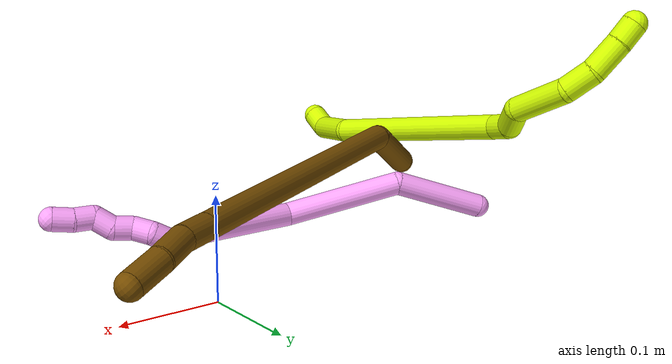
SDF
<sdf version="1.7">
 <world name="default">
  <model name="4">
   <static>0</static>
   <link name="4">
    <collision name="collision-cylinder-e_1_1_4">
     <pose>0.034634 -0.025984 -0.023651 2.30922 0.77819 1.4957</pose>
     <geometry><cylinder><radius>0.0125</radius><length>0.098672</length></cylinder></geometry>
     <surface>
      <friction><ode><mu>1.16</mu><mu2>1.16</mu2><slip1>0</slip1><slip2>0</slip2></ode></friction>
      <contact><ode><kp>1e+06</kp><kd>1</kd><max_vel>0</max_vel><min_depth>0.001</min_depth></ode></contact>
     </surface>
    </collision>
    <visual name="visual-cylinder-e_1_1_4">
     <pose>0.034634 -0.025984 -0.023651 2.30922 0.77819 1.4957</pose>
     <geometry><cylinder><radius>0.0125</radius><length>0.098672</length></cylinder></geometry>
     <material><ambient>1 0.65098 0.996078 1</ambient></material>
    </visual>
    <collision name="collision-cylinder-e_2_4_5">
     <pose>0.088183 -0.075472 -0.102307 2.73778 0.306288 1.29219</pose>
     <geometry><cylinder><radius>0.0125</radius><length>0.125471</length></cylinder></geometry>
     <surface>
      <friction><ode><mu>1.16</mu><mu2>1.16</mu2><slip1>0</slip1><slip2>0</slip2></ode></friction>
      <contact><ode><kp>1e+06</kp><kd>1</kd><max_vel>0</max_vel><min_depth>0.001</min_depth></ode></contact>
     </surface>
    </collision>
    <visual name="visual-cylinder-e_2_4_5">
     <pose>0.088183 -0.075472 -0.102307 2.73778 0.306288 1.29219</pose>
     <geometry><cylinder><radius>0.0125</radius><length>0.125471</length></cylinder></geometry>
     <material><ambient>1 0.65098 0.996078 1</ambient></material>
    </visual>
    <collision name="collision-cylinder-e_3_5_6">
     <pose>0.153693 -0.099904 -0.197454 3.11846 0.859507 3.09113</pose>
     <geometry><cylinder><radius>0.0125</radius><length>0.123017</length></cylinder></geometry>
     <surface>
      <friction><ode><mu>1.16</mu><mu2>1.16</mu2><slip1>0</slip1><slip2>0</slip2></ode></friction>
      <contact><ode><kp>1e+06</kp><kd>1</kd><max_vel>0</max_vel><min_depth>0.001</min_depth></ode></contact>
     </surface>
    </collision>
    <visual name="visual-cylinder-e_3_5_6">
     <pose>0.153693 -0.099904 -0.197454 3.11846 0.859507 3.09113</pose>
     <geometry><cylinder><radius>0.0125</radius><length>0.123017</length></cylinder></geometry>
     <material><ambient>1 0.65098 0.996078 1</ambient></material>
    </visual>
    <collision name="collision-cylinder-e_4_6_7">
     <pose>0.208165 -0.100629 -0.24714 -3.12022 0.68997 -3.08214</pose>
     <geometry><cylinder><radius>0.0125</radius><length>0.024753</length></cylinder></geometry>
     <surface>
      <friction><ode><mu>1.16</mu><mu2>1.16</mu2><slip1>0</slip1><slip2>0</slip2></ode></friction>
      <contact><ode><kp>1e+06</kp><kd>1</kd><max_vel>0</max_vel><min_depth>0.001</min_depth></ode></contact>
     </surface>
    </collision>
    <visual name="visual-cylinder-e_4_6_7">
     <pose>0.208165 -0.100629 -0.24714 -3.12022 0.68997 -3.08214</pose>
     <geometry><cylinder><radius>0.0125</radius><length>0.024753</length></cylinder></geometry>
     <material><ambient>1 0.65098 0.996078 1</ambient></material>
    </visual>
    <collision name="collision-cylinder-e_5_7_8">
     <pose>0.224885 -0.106085 -0.260381 2.14946 0.918033 1.48012</pose>
     <geometry><cylinder><radius>0.0125</radius><length>0.022261</length></cylinder></geometry>
     <surface>
      <friction><ode><mu>1.16</mu><mu2>1.16</mu2><slip1>0</slip1><slip2>0</slip2></ode></friction>
      <contact><ode><kp>1e+06</kp><kd>1</kd><max_vel>0</max_vel><min_depth>0.001</min_depth></ode></contact>
     </surface>
    </collision>
    <visual name="visual-cylinder-e_5_7_8">
     <pose>0.224885 -0.106085 -0.260381 2.14946 0.918033 1.48012</pose>
     <geometry><cylinder><radius>0.0125</radius><length>0.022261</length></cylinder></geometry>
     <material><ambient>1 0.65098 0.996078 1</ambient></material>
    </visual>
    <collision name="collision-cylinder-e_6_8_9">
     <pose>0.237394 -0.119787 -0.269304 2.14704 0.365206 0.655866</pose>
     <geometry><cylinder><radius>0.0125</radius><length>0.020536</length></cylinder></geometry>
     <surface>
      <friction><ode><mu>1.16</mu><mu2>1.16</mu2><slip1>0</slip1><slip2>0</slip2></ode></friction>
      <contact><ode><kp>1e+06</kp><kd>1</kd><max_vel>0</max_vel><min_depth>0.001</min_depth></ode></contact>
     </surface>
    </collision>
    <visual name="visual-cylinder-e_6_8_9">
     <pose>0.237394 -0.119787 -0.269304 2.14704 0.365206 0.655866</pose>
     <geometry><cylinder><radius>0.0125</radius><length>0.020536</length></cylinder></geometry>
     <material><ambient>1 0.65098 0.996078 1</ambient></material>
    </visual>
    <collision name="collision-cylinder-e_7_9_10">
     <pose>0.24748 -0.131696 -0.281416 2.62991 0.682477 1.87192</pose>
     <geometry><cylinder><radius>0.0125</radius><length>0.020353</length></cylinder></geometry>
     <surface>
      <friction><ode><mu>1.16</mu><mu2>1.16</mu2><slip1>0</slip1><slip2>0</slip2></ode></friction>
      <contact><ode><kp>1e+06</kp><kd>1</kd><max_vel>0</max_vel><min_depth>0.001</min_depth></ode></contact>
     </surface>
    </collision>
    <visual name="visual-cylinder-e_7_9_10">
     <pose>0.24748 -0.131696 -0.281416 2.62991 0.682477 1.87192</pose>
     <geometry><cylinder><radius>0.0125</radius><length>0.020353</length></cylinder></geometry>
     <material><ambient>1 0.65098 0.996078 1</ambient></material>
    </visual>
    <collision name="collision-cylinder-e_8_10_11">
     <pose>0.260638 -0.143748 -0.29115 1.90565 0.660897 0.899194</pose>
     <geometry><cylinder><radius>0.0125</radius><length>0.021958</length></cylinder></geometry>
     <surface>
      <friction><ode><mu>1.16</mu><mu2>1.16</mu2><slip1>0</slip1><slip2>0</slip2></ode></friction>
      <contact><ode><kp>1e+06</kp><kd>1</kd><max_vel>0</max_vel><min_depth>0.001</min_depth></ode></contact>
     </surface>
    </collision>
    <visual name="visual-cylinder-e_8_10_11">
     <pose>0.260638 -0.143748 -0.29115 1.90565 0.660897 0.899194</pose>
     <geometry><cylinder><radius>0.0125</radius><length>0.021958</length></cylinder></geometry>
     <material><ambient>1 0.65098 0.996078 1</ambient></material>
    </visual>
    <collision name="collision-cylinder-e_9_11_12">
     <pose>0.274156 -0.15421 -0.301612 2.85107 0.70624 2.3859</pose>
     <geometry><cylinder><radius>0.0125</radius><length>0.020892</length></cylinder></geometry>
     <surface>
      <friction><ode><mu>1.16</mu><mu2>1.16</mu2><slip1>0</slip1><slip2>0</slip2></ode></friction>
      <contact><ode><kp>1e+06</kp><kd>1</kd><max_vel>0</max_vel><min_depth>0.001</min_depth></ode></contact>
     </surface>
    </collision>
    <visual name="visual-cylinder-e_9_11_12">
     <pose>0.274156 -0.15421 -0.301612 2.85107 0.70624 2.3859</pose>
     <geometry><cylinder><radius>0.0125</radius><length>0.020892</length></cylinder></geometry>
     <material><ambient>1 0.65098 0.996078 1</ambient></material>
    </visual>
    <collision name="collision-cylinder-e_10_12_2">
     <pose>0.288197 -0.160859 -0.316306 2.58838 0.717606 1.84573</pose>
     <geometry><cylinder><radius>0.0125</radius><length>0.022087</length></cylinder></geometry>
     <surface>
      <friction><ode><mu>1.16</mu><mu2>1.16</mu2><slip1>0</slip1><slip2>0</slip2></ode></friction>
      <contact><ode><kp>1e+06</kp><kd>1</kd><max_vel>0</max_vel><min_depth>0.001</min_depth></ode></contact>
     </surface>
    </collision>
    <visual name="visual-cylinder-e_10_12_2">
     <pose>0.288197 -0.160859 -0.316306 2.58838 0.717606 1.84573</pose>
     <geometry><cylinder><radius>0.0125</radius><length>0.022087</length></cylinder></geometry>
     <material><ambient>1 0.65098 0.996078 1</ambient></material>
    </visual>
    <collision name="collision-sphere-2">
     <pose>0.295459 -0.16523 -0.323385 0 -0 0</pose>
     <geometry><sphere><radius>0.0125</radius></sphere></geometry>
     <surface>
      <friction><ode><mu>1.16</mu><mu2>1.16</mu2><slip1>0</slip1><slip2>0</slip2></ode></friction>
      <contact><ode><kp>1e+06</kp><kd>1</kd><max_vel>0</max_vel><min_depth>0.001</min_depth></ode></contact>
     </surface>
    </collision>
    <visual name="visual-sphere-2">
     <pose>0.295459 -0.16523 -0.323385 0 -0 0</pose>
     <geometry><sphere><radius>0.0125</radius></sphere></geometry>
     <material><ambient>1 0.65098 0.996078 1</ambient></material>
    </visual>
    <collision name="collision-sphere-12">
     <pose>0.280935 -0.156487 -0.309227 0 -0 0</pose>
     <geometry><sphere><radius>0.0125</radius></sphere></geometry>
     <surface>
      <friction><ode><mu>1.16</mu><mu2>1.16</mu2><slip1>0</slip1><slip2>0</slip2></ode></friction>
      <contact><ode><kp>1e+06</kp><kd>1</kd><max_vel>0</max_vel><min_depth>0.001</min_depth></ode></contact>
     </surface>
    </collision>
    <visual name="visual-sphere-12">
     <pose>0.280935 -0.156487 -0.309227 0 -0 0</pose>
     <geometry><sphere><radius>0.0125</radius></sphere></geometry>
     <material><ambient>1 0.65098 0.996078 1</ambient></material>
    </visual>
    <collision name="collision-sphere-11">
     <pose>0.267377 -0.151934 -0.293998 0 -0 0</pose>
     <geometry><sphere><radius>0.0125</radius></sphere></geometry>
     <surface>
      <friction><ode><mu>1.16</mu><mu2>1.16</mu2><slip1>0</slip1><slip2>0</slip2></ode></friction>
      <contact><ode><kp>1e+06</kp><kd>1</kd><max_vel>0</max_vel><min_depth>0.001</min_depth></ode></contact>
     </surface>
    </collision>
    <visual name="visual-sphere-11">
     <pose>0.267377 -0.151934 -0.293998 0 -0 0</pose>
     <geometry><sphere><radius>0.0125</radius></sphere></geometry>
     <material><ambient>1 0.65098 0.996078 1</ambient></material>
    </visual>
    <collision name="collision-sphere-10">
     <pose>0.253898 -0.135562 -0.288301 0 -0 0</pose>
     <geometry><sphere><radius>0.0125</radius></sphere></geometry>
     <surface>
      <friction><ode><mu>1.16</mu><mu2>1.16</mu2><slip1>0</slip1><slip2>0</slip2></ode></friction>
      <contact><ode><kp>1e+06</kp><kd>1</kd><max_vel>0</max_vel><min_depth>0.001</min_depth></ode></contact>
     </surface>
    </collision>
    <visual name="visual-sphere-10">
     <pose>0.253898 -0.135562 -0.288301 0 -0 0</pose>
     <geometry><sphere><radius>0.0125</radius></sphere></geometry>
     <material><ambient>1 0.65098 0.996078 1</ambient></material>
    </visual>
    <collision name="collision-sphere-9">
     <pose>0.241062 -0.127829 -0.27453 0 -0 0</pose>
     <geometry><sphere><radius>0.0125</radius></sphere></geometry>
     <surface>
      <friction><ode><mu>1.16</mu><mu2>1.16</mu2><slip1>0</slip1><slip2>0</slip2></ode></friction>
      <contact><ode><kp>1e+06</kp><kd>1</kd><max_vel>0</max_vel><min_depth>0.001</min_depth></ode></contact>
     </surface>
    </collision>
    <visual name="visual-sphere-9">
     <pose>0.241062 -0.127829 -0.27453 0 -0 0</pose>
     <geometry><sphere><radius>0.0125</radius></sphere></geometry>
     <material><ambient>1 0.65098 0.996078 1</ambient></material>
    </visual>
    <collision name="collision-sphere-4">
     <pose>0.069267 -0.051969 -0.047302 0 -0 0</pose>
     <geometry><sphere><radius>0.0125</radius></sphere></geometry>
     <surface>
      <friction><ode><mu>1.16</mu><mu2>1.16</mu2><slip1>0</slip1><slip2>0</slip2></ode></friction>
      <contact><ode><kp>1e+06</kp><kd>1</kd><max_vel>0</max_vel><min_depth>0.001</min_depth></ode></contact>
     </surface>
    </collision>
    <visual name="visual-sphere-4">
     <pose>0.069267 -0.051969 -0.047302 0 -0 0</pose>
     <geometry><sphere><radius>0.0125</radius></sphere></geometry>
     <material><ambient>1 0.65098 0.996078 1</ambient></material>
    </visual>
    <collision name="collision-sphere-1">
     <geometry><sphere><radius>0.0125</radius></sphere></geometry>
     <surface>
      <friction><ode><mu>1.16</mu><mu2>1.16</mu2><slip1>0</slip1><slip2>0</slip2></ode></friction>
      <contact><ode><kp>1e+06</kp><kd>1</kd><max_vel>0</max_vel><min_depth>0.001</min_depth></ode></contact>
     </surface>
    </collision>
    <visual name="visual-sphere-1">
     <geometry><sphere><radius>0.0125</radius></sphere></geometry>
     <material><ambient>1 0.65098 0.996078 1</ambient></material>
    </visual>
    <collision name="collision-sphere-8">
     <pose>0.233727 -0.111745 -0.264078 0 -0 0</pose>
     <geometry><sphere><radius>0.0125</radius></sphere></geometry>
     <surface>
      <friction><ode><mu>1.16</mu><mu2>1.16</mu2><slip1>0</slip1><slip2>0</slip2></ode></friction>
      <contact><ode><kp>1e+06</kp><kd>1</kd><max_vel>0</max_vel><min_depth>0.001</min_depth></ode></contact>
     </surface>
    </collision>
    <visual name="visual-sphere-8">
     <pose>0.233727 -0.111745 -0.264078 0 -0 0</pose>
     <geometry><sphere><radius>0.0125</radius></sphere></geometry>
     <material><ambient>1 0.65098 0.996078 1</ambient></material>
    </visual>
    <collision name="collision-sphere-5">
     <pose>0.107099 -0.098975 -0.157312 0 -0 0</pose>
     <geometry><sphere><radius>0.0125</radius></sphere></geometry>
     <surface>
      <friction><ode><mu>1.16</mu><mu2>1.16</mu2><slip1>0</slip1><slip2>0</slip2></ode></friction>
      <contact><ode><kp>1e+06</kp><kd>1</kd><max_vel>0</max_vel><min_depth>0.001</min_depth></ode></contact>
     </surface>
    </collision>
    <visual name="visual-sphere-5">
     <pose>0.107099 -0.098975 -0.157312 0 -0 0</pose>
     <geometry><sphere><radius>0.0125</radius></sphere></geometry>
     <material><ambient>1 0.65098 0.996078 1</ambient></material>
    </visual>
    <collision name="collision-sphere-6">
     <pose>0.200287 -0.100833 -0.237597 0 -0 0</pose>
     <geometry><sphere><radius>0.0125</radius></sphere></geometry>
     <surface>
      <friction><ode><mu>1.16</mu><mu2>1.16</mu2><slip1>0</slip1><slip2>0</slip2></ode></friction>
      <contact><ode><kp>1e+06</kp><kd>1</kd><max_vel>0</max_vel><min_depth>0.001</min_depth></ode></contact>
     </surface>
    </collision>
    <visual name="visual-sphere-6">
     <pose>0.200287 -0.100833 -0.237597 0 -0 0</pose>
     <geometry><sphere><radius>0.0125</radius></sphere></geometry>
     <material><ambient>1 0.65098 0.996078 1</ambient></material>
    </visual>
    <collision name="collision-sphere-7">
     <pose>0.216043 -0.100425 -0.256683 0 -0 0</pose>
     <geometry><sphere><radius>0.0125</radius></sphere></geometry>
     <surface>
      <friction><ode><mu>1.16</mu><mu2>1.16</mu2><slip1>0</slip1><slip2>0</slip2></ode></friction>
      <contact><ode><kp>1e+06</kp><kd>1</kd><max_vel>0</max_vel><min_depth>0.001</min_depth></ode></contact>
     </surface>
    </collision>
    <visual name="visual-sphere-7">
     <pose>0.216043 -0.100425 -0.256683 0 -0 0</pose>
     <geometry><sphere><radius>0.0125</radius></sphere></geometry>
     <material><ambient>1 0.65098 0.996078 1</ambient></material>
    </visual>
    <inertial>
     <pose>0.142552 -0.088494 -0.164626 0 -0 0</pose>
     <mass>0.5</mass>
     <inertia>
      <ixx>0.000193</ixx>
      <ixy>0</ixy>
      <ixz>0</ixz>
      <iyy>0.000395</iyy>
      <iyz>0</iyz>
      <izz>-0.000149</izz>
     </inertia>
    </inertial>
   </link>
   <pose>-0.376507 -0.057601 0.012553 -0.560329 -0.645058 0.410379</pose>
  </model>
  <model name="12">
   <static>0</static>
   <link name="12">
    <collision name="collision-cylinder-e_1_1_4">
     <pose>0.009962 0.027155 0.024918 -0.828325 0.263993 -0.116595</pose>
     <geometry><cylinder><radius>0.0125</radius><length>0.076356</length></cylinder></geometry>
     <surface>
      <friction><ode><mu>1.16</mu><mu2>1.16</mu2><slip1>0</slip1><slip2>0</slip2></ode></friction>
      <contact><ode><kp>1e+06</kp><kd>1</kd><max_vel>0</max_vel><min_depth>0.001</min_depth></ode></contact>
     </surface>
    </collision>
    <visual name="visual-cylinder-e_1_1_4">
     <pose>0.009962 0.027155 0.024918 -0.828325 0.263993 -0.116595</pose>
     <geometry><cylinder><radius>0.0125</radius><length>0.076356</length></cylinder></geometry>
     <material><ambient>0.466667 0.301961 0 1</ambient></material>
    </visual>
    <collision name="collision-cylinder-e_2_4_5">
     <pose>0.133464 0.151425 0.097461 -1.11486 0.809641 -0.522032</pose>
     <geometry><cylinder><radius>0.0125</radius><length>0.313629</length></cylinder></geometry>
     <surface>
      <friction><ode><mu>1.16</mu><mu2>1.16</mu2><slip1>0</slip1><slip2>0</slip2></ode></friction>
      <contact><ode><kp>1e+06</kp><kd>1</kd><max_vel>0</max_vel><min_depth>0.001</min_depth></ode></contact>
     </surface>
    </collision>
    <visual name="visual-cylinder-e_2_4_5">
     <pose>0.133464 0.151425 0.097461 -1.11486 0.809641 -0.522032</pose>
     <geometry><cylinder><radius>0.0125</radius><length>0.313629</length></cylinder></geometry>
     <material><ambient>0.466667 0.301961 0 1</ambient></material>
    </visual>
    <collision name="collision-cylinder-e_3_5_6">
     <pose>0.25903 0.25892 0.150207 -1.11242 0.804541 -0.517173</pose>
     <geometry><cylinder><radius>0.0125</radius><length>0.033382</length></cylinder></geometry>
     <surface>
      <friction><ode><mu>1.16</mu><mu2>1.16</mu2><slip1>0</slip1><slip2>0</slip2></ode></friction>
      <contact><ode><kp>1e+06</kp><kd>1</kd><max_vel>0</max_vel><min_depth>0.001</min_depth></ode></contact>
     </surface>
    </collision>
    <visual name="visual-cylinder-e_3_5_6">
     <pose>0.25903 0.25892 0.150207 -1.11242 0.804541 -0.517173</pose>
     <geometry><cylinder><radius>0.0125</radius><length>0.033382</length></cylinder></geometry>
     <material><ambient>0.466667 0.301961 0 1</ambient></material>
    </visual>
    <collision name="collision-cylinder-e_4_6_7">
     <pose>0.284766 0.28235 0.157708 -1.39043 0.801859 -0.679729</pose>
     <geometry><cylinder><radius>0.0125</radius><length>0.038153</length></cylinder></geometry>
     <surface>
      <friction><ode><mu>1.16</mu><mu2>1.16</mu2><slip1>0</slip1><slip2>0</slip2></ode></friction>
      <contact><ode><kp>1e+06</kp><kd>1</kd><max_vel>0</max_vel><min_depth>0.001</min_depth></ode></contact>
     </surface>
    </collision>
    <visual name="visual-cylinder-e_4_6_7">
     <pose>0.284766 0.28235 0.157708 -1.39043 0.801859 -0.679729</pose>
     <geometry><cylinder><radius>0.0125</radius><length>0.038153</length></cylinder></geometry>
     <material><ambient>0.466667 0.301961 0 1</ambient></material>
    </visual>
    <collision name="collision-cylinder-e_5_7_2">
     <pose>0.314615 0.305465 0.162977 -1.29123 0.995269 -0.776864</pose>
     <geometry><cylinder><radius>0.0125</radius><length>0.03848</length></cylinder></geometry>
     <surface>
      <friction><ode><mu>1.16</mu><mu2>1.16</mu2><slip1>0</slip1><slip2>0</slip2></ode></friction>
      <contact><ode><kp>1e+06</kp><kd>1</kd><max_vel>0</max_vel><min_depth>0.001</min_depth></ode></contact>
     </surface>
    </collision>
    <visual name="visual-cylinder-e_5_7_2">
     <pose>0.314615 0.305465 0.162977 -1.29123 0.995269 -0.776864</pose>
     <geometry><cylinder><radius>0.0125</radius><length>0.03848</length></cylinder></geometry>
     <material><ambient>0.466667 0.301961 0 1</ambient></material>
    </visual>
    <collision name="collision-sphere-2">
     <pose>0.330756 0.31553 0.165867 0 -0 0</pose>
     <geometry><sphere><radius>0.0125</radius></sphere></geometry>
     <surface>
      <friction><ode><mu>1.16</mu><mu2>1.16</mu2><slip1>0</slip1><slip2>0</slip2></ode></friction>
      <contact><ode><kp>1e+06</kp><kd>1</kd><max_vel>0</max_vel><min_depth>0.001</min_depth></ode></contact>
     </surface>
    </collision>
    <visual name="visual-sphere-2">
     <pose>0.330756 0.31553 0.165867 0 -0 0</pose>
     <geometry><sphere><radius>0.0125</radius></sphere></geometry>
     <material><ambient>0.466667 0.301961 0 1</ambient></material>
    </visual>
    <collision name="collision-sphere-7">
     <pose>0.298475 0.2954 0.160088 0 -0 0</pose>
     <geometry><sphere><radius>0.0125</radius></sphere></geometry>
     <surface>
      <friction><ode><mu>1.16</mu><mu2>1.16</mu2><slip1>0</slip1><slip2>0</slip2></ode></friction>
      <contact><ode><kp>1e+06</kp><kd>1</kd><max_vel>0</max_vel><min_depth>0.001</min_depth></ode></contact>
     </surface>
    </collision>
    <visual name="visual-sphere-7">
     <pose>0.298475 0.2954 0.160088 0 -0 0</pose>
     <geometry><sphere><radius>0.0125</radius></sphere></geometry>
     <material><ambient>0.466667 0.301961 0 1</ambient></material>
    </visual>
    <collision name="collision-sphere-6">
     <pose>0.271056 0.269299 0.155328 0 -0 0</pose>
     <geometry><sphere><radius>0.0125</radius></sphere></geometry>
     <surface>
      <friction><ode><mu>1.16</mu><mu2>1.16</mu2><slip1>0</slip1><slip2>0</slip2></ode></friction>
      <contact><ode><kp>1e+06</kp><kd>1</kd><max_vel>0</max_vel><min_depth>0.001</min_depth></ode></contact>
     </surface>
    </collision>
    <visual name="visual-sphere-6">
     <pose>0.271056 0.269299 0.155328 0 -0 0</pose>
     <geometry><sphere><radius>0.0125</radius></sphere></geometry>
     <material><ambient>0.466667 0.301961 0 1</ambient></material>
    </visual>
    <collision name="collision-sphere-5">
     <pose>0.247004 0.248541 0.145086 0 -0 0</pose>
     <geometry><sphere><radius>0.0125</radius></sphere></geometry>
     <surface>
      <friction><ode><mu>1.16</mu><mu2>1.16</mu2><slip1>0</slip1><slip2>0</slip2></ode></friction>
      <contact><ode><kp>1e+06</kp><kd>1</kd><max_vel>0</max_vel><min_depth>0.001</min_depth></ode></contact>
     </surface>
    </collision>
    <visual name="visual-sphere-5">
     <pose>0.247004 0.248541 0.145086 0 -0 0</pose>
     <geometry><sphere><radius>0.0125</radius></sphere></geometry>
     <material><ambient>0.466667 0.301961 0 1</ambient></material>
    </visual>
    <collision name="collision-sphere-1">
     <geometry><sphere><radius>0.0125</radius></sphere></geometry>
     <surface>
      <friction><ode><mu>1.16</mu><mu2>1.16</mu2><slip1>0</slip1><slip2>0</slip2></ode></friction>
      <contact><ode><kp>1e+06</kp><kd>1</kd><max_vel>0</max_vel><min_depth>0.001</min_depth></ode></contact>
     </surface>
    </collision>
    <visual name="visual-sphere-1">
     <geometry><sphere><radius>0.0125</radius></sphere></geometry>
     <material><ambient>0.466667 0.301961 0 1</ambient></material>
    </visual>
    <collision name="collision-sphere-4">
     <pose>0.019924 0.05431 0.049836 0 -0 0</pose>
     <geometry><sphere><radius>0.0125</radius></sphere></geometry>
     <surface>
      <friction><ode><mu>1.16</mu><mu2>1.16</mu2><slip1>0</slip1><slip2>0</slip2></ode></friction>
      <contact><ode><kp>1e+06</kp><kd>1</kd><max_vel>0</max_vel><min_depth>0.001</min_depth></ode></contact>
     </surface>
    </collision>
    <visual name="visual-sphere-4">
     <pose>0.019924 0.05431 0.049836 0 -0 0</pose>
     <geometry><sphere><radius>0.0125</radius></sphere></geometry>
     <material><ambient>0.466667 0.301961 0 1</ambient></material>
    </visual>
    <inertial>
     <pose>0.148474 0.16147 0.099544 0 -0 0</pose>
     <mass>0.5</mass>
     <inertia>
      <ixx>0.000718</ixx>
      <ixy>0</ixy>
      <ixz>0</ixz>
      <iyy>0.000988</iyy>
      <iyz>0</iyz>
      <izz>-0.003519</izz>
     </inertia>
    </inertial>
   </link>
   <pose>-0.298062 -0.097897 0.067997 0.334668 0.644462 -0.089143</pose>
  </model>
  <model name="15">
   <static>0</static>
   <link name="15">
    <collision name="collision-cylinder-e_1_1_4">
     <pose>-0.010977 0.003876 0.002628 -0.974901 -1.16757 0.673688</pose>
     <geometry><cylinder><radius>0.0125</radius><length>0.023868</length></cylinder></geometry>
     <surface>
      <friction><ode><mu>1.16</mu><mu2>1.16</mu2><slip1>0</slip1><slip2>0</slip2></ode></friction>
      <contact><ode><kp>1e+06</kp><kd>1</kd><max_vel>0</max_vel><min_depth>0.001</min_depth></ode></contact>
     </surface>
    </collision>
    <visual name="visual-cylinder-e_1_1_4">
     <pose>-0.010977 0.003876 0.002628 -0.974901 -1.16757 0.673688</pose>
     <geometry><cylinder><radius>0.0125</radius><length>0.023868</length></cylinder></geometry>
     <material><ambient>0.835294 1 0 1</ambient></material>
    </visual>
    <collision name="collision-cylinder-e_2_4_5">
     <pose>-0.044298 0.034027 0.001527 -1.71178 -0.699808 0.795881</pose>
     <geometry><cylinder><radius>0.0125</radius><length>0.069385</length></cylinder></geometry>
     <surface>
      <friction><ode><mu>1.16</mu><mu2>1.16</mu2><slip1>0</slip1><slip2>0</slip2></ode></friction>
      <contact><ode><kp>1e+06</kp><kd>1</kd><max_vel>0</max_vel><min_depth>0.001</min_depth></ode></contact>
     </surface>
    </collision>
    <visual name="visual-cylinder-e_2_4_5">
     <pose>-0.044298 0.034027 0.001527 -1.71178 -0.699808 0.795881</pose>
     <geometry><cylinder><radius>0.0125</radius><length>0.069385</length></cylinder></geometry>
     <material><ambient>0.835294 1 0 1</ambient></material>
    </visual>
    <collision name="collision-cylinder-e_3_5_6">
     <pose>-0.116568 0.144995 0.027984 -1.22842 -0.506876 0.361321</pose>
     <geometry><cylinder><radius>0.0125</radius><length>0.205685</length></cylinder></geometry>
     <surface>
      <friction><ode><mu>1.16</mu><mu2>1.16</mu2><slip1>0</slip1><slip2>0</slip2></ode></friction>
      <contact><ode><kp>1e+06</kp><kd>1</kd><max_vel>0</max_vel><min_depth>0.001</min_depth></ode></contact>
     </surface>
    </collision>
    <visual name="visual-cylinder-e_3_5_6">
     <pose>-0.116568 0.144995 0.027984 -1.22842 -0.506876 0.361321</pose>
     <geometry><cylinder><radius>0.0125</radius><length>0.205685</length></cylinder></geometry>
     <material><ambient>0.835294 1 0 1</ambient></material>
    </visual>
    <collision name="collision-cylinder-e_4_6_7">
     <pose>-0.173249 0.239635 0.058137 -1.57413 -0.596682 0.598559</pose>
     <geometry><cylinder><radius>0.0125</radius><length>0.024049</length></cylinder></geometry>
     <surface>
      <friction><ode><mu>1.16</mu><mu2>1.16</mu2><slip1>0</slip1><slip2>0</slip2></ode></friction>
      <contact><ode><kp>1e+06</kp><kd>1</kd><max_vel>0</max_vel><min_depth>0.001</min_depth></ode></contact>
     </surface>
    </collision>
    <visual name="visual-cylinder-e_4_6_7">
     <pose>-0.173249 0.239635 0.058137 -1.57413 -0.596682 0.598559</pose>
     <geometry><cylinder><radius>0.0125</radius><length>0.024049</length></cylinder></geometry>
     <material><ambient>0.835294 1 0 1</ambient></material>
    </visual>
    <collision name="collision-cylinder-e_5_7_8">
     <pose>-0.181883 0.263594 0.051642 -2.00288 -0.121059 0.188805</pose>
     <geometry><cylinder><radius>0.0125</radius><length>0.031088</length></cylinder></geometry>
     <surface>
      <friction><ode><mu>1.16</mu><mu2>1.16</mu2><slip1>0</slip1><slip2>0</slip2></ode></friction>
      <contact><ode><kp>1e+06</kp><kd>1</kd><max_vel>0</max_vel><min_depth>0.001</min_depth></ode></contact>
     </surface>
    </collision>
    <visual name="visual-cylinder-e_5_7_8">
     <pose>-0.181883 0.263594 0.051642 -2.00288 -0.121059 0.188805</pose>
     <geometry><cylinder><radius>0.0125</radius><length>0.031088</length></cylinder></geometry>
     <material><ambient>0.835294 1 0 1</ambient></material>
    </visual>
    <collision name="collision-cylinder-e_6_8_9">
     <pose>-0.190834 0.305262 0.051331 -1.35197 -0.244673 0.196588</pose>
     <geometry><cylinder><radius>0.0125</radius><length>0.058402</length></cylinder></geometry>
     <surface>
      <friction><ode><mu>1.16</mu><mu2>1.16</mu2><slip1>0</slip1><slip2>0</slip2></ode></friction>
      <contact><ode><kp>1e+06</kp><kd>1</kd><max_vel>0</max_vel><min_depth>0.001</min_depth></ode></contact>
     </surface>
    </collision>
    <visual name="visual-cylinder-e_6_8_9">
     <pose>-0.190834 0.305262 0.051331 -1.35197 -0.244673 0.196588</pose>
     <geometry><cylinder><radius>0.0125</radius><length>0.058402</length></cylinder></geometry>
     <material><ambient>0.835294 1 0 1</ambient></material>
    </visual>
    <collision name="collision-cylinder-e_7_9_10">
     <pose>-0.195244 0.346617 0.063671 -1.14644 0.175323 -0.113344</pose>
     <geometry><cylinder><radius>0.0125</radius><length>0.030534</length></cylinder></geometry>
     <surface>
      <friction><ode><mu>1.16</mu><mu2>1.16</mu2><slip1>0</slip1><slip2>0</slip2></ode></friction>
      <contact><ode><kp>1e+06</kp><kd>1</kd><max_vel>0</max_vel><min_depth>0.001</min_depth></ode></contact>
     </surface>
    </collision>
    <visual name="visual-cylinder-e_7_9_10">
     <pose>-0.195244 0.346617 0.063671 -1.14644 0.175323 -0.113344</pose>
     <geometry><cylinder><radius>0.0125</radius><length>0.030534</length></cylinder></geometry>
     <material><ambient>0.835294 1 0 1</ambient></material>
    </visual>
    <collision name="collision-cylinder-e_8_10_11">
     <pose>-0.184482 0.374385 0.076075 -1.15482 0.484665 -0.319335</pose>
     <geometry><cylinder><radius>0.0125</radius><length>0.034766</length></cylinder></geometry>
     <surface>
      <friction><ode><mu>1.16</mu><mu2>1.16</mu2><slip1>0</slip1><slip2>0</slip2></ode></friction>
      <contact><ode><kp>1e+06</kp><kd>1</kd><max_vel>0</max_vel><min_depth>0.001</min_depth></ode></contact>
     </surface>
    </collision>
    <visual name="visual-cylinder-e_8_10_11">
     <pose>-0.184482 0.374385 0.076075 -1.15482 0.484665 -0.319335</pose>
     <geometry><cylinder><radius>0.0125</radius><length>0.034766</length></cylinder></geometry>
     <material><ambient>0.835294 1 0 1</ambient></material>
    </visual>
    <collision name="collision-cylinder-e_9_11_2">
     <pose>-0.170347 0.396956 0.086132 -1.14636 0.574324 -0.376723</pose>
     <geometry><cylinder><radius>0.0125</radius><length>0.022223</length></cylinder></geometry>
     <surface>
      <friction><ode><mu>1.16</mu><mu2>1.16</mu2><slip1>0</slip1><slip2>0</slip2></ode></friction>
      <contact><ode><kp>1e+06</kp><kd>1</kd><max_vel>0</max_vel><min_depth>0.001</min_depth></ode></contact>
     </surface>
    </collision>
    <visual name="visual-cylinder-e_9_11_2">
     <pose>-0.170347 0.396956 0.086132 -1.14636 0.574324 -0.376723</pose>
     <geometry><cylinder><radius>0.0125</radius><length>0.022223</length></cylinder></geometry>
     <material><ambient>0.835294 1 0 1</ambient></material>
    </visual>
    <collision name="collision-sphere-2">
     <pose>-0.16431 0.405457 0.089974 0 -0 0</pose>
     <geometry><sphere><radius>0.0125</radius></sphere></geometry>
     <surface>
      <friction><ode><mu>1.16</mu><mu2>1.16</mu2><slip1>0</slip1><slip2>0</slip2></ode></friction>
      <contact><ode><kp>1e+06</kp><kd>1</kd><max_vel>0</max_vel><min_depth>0.001</min_depth></ode></contact>
     </surface>
    </collision>
    <visual name="visual-sphere-2">
     <pose>-0.16431 0.405457 0.089974 0 -0 0</pose>
     <geometry><sphere><radius>0.0125</radius></sphere></geometry>
     <material><ambient>0.835294 1 0 1</ambient></material>
    </visual>
    <collision name="collision-sphere-11">
     <pose>-0.176384 0.388455 0.08229 0 -0 0</pose>
     <geometry><sphere><radius>0.0125</radius></sphere></geometry>
     <surface>
      <friction><ode><mu>1.16</mu><mu2>1.16</mu2><slip1>0</slip1><slip2>0</slip2></ode></friction>
      <contact><ode><kp>1e+06</kp><kd>1</kd><max_vel>0</max_vel><min_depth>0.001</min_depth></ode></contact>
     </surface>
    </collision>
    <visual name="visual-sphere-11">
     <pose>-0.176384 0.388455 0.08229 0 -0 0</pose>
     <geometry><sphere><radius>0.0125</radius></sphere></geometry>
     <material><ambient>0.835294 1 0 1</ambient></material>
    </visual>
    <collision name="collision-sphere-10">
     <pose>-0.192581 0.360316 0.06986 0 -0 0</pose>
     <geometry><sphere><radius>0.0125</radius></sphere></geometry>
     <surface>
      <friction><ode><mu>1.16</mu><mu2>1.16</mu2><slip1>0</slip1><slip2>0</slip2></ode></friction>
      <contact><ode><kp>1e+06</kp><kd>1</kd><max_vel>0</max_vel><min_depth>0.001</min_depth></ode></contact>
     </surface>
    </collision>
    <visual name="visual-sphere-10">
     <pose>-0.192581 0.360316 0.06986 0 -0 0</pose>
     <geometry><sphere><radius>0.0125</radius></sphere></geometry>
     <material><ambient>0.835294 1 0 1</ambient></material>
    </visual>
    <collision name="collision-sphere-9">
     <pose>-0.197907 0.332917 0.057481 0 -0 0</pose>
     <geometry><sphere><radius>0.0125</radius></sphere></geometry>
     <surface>
      <friction><ode><mu>1.16</mu><mu2>1.16</mu2><slip1>0</slip1><slip2>0</slip2></ode></friction>
      <contact><ode><kp>1e+06</kp><kd>1</kd><max_vel>0</max_vel><min_depth>0.001</min_depth></ode></contact>
     </surface>
    </collision>
    <visual name="visual-sphere-9">
     <pose>-0.197907 0.332917 0.057481 0 -0 0</pose>
     <geometry><sphere><radius>0.0125</radius></sphere></geometry>
     <material><ambient>0.835294 1 0 1</ambient></material>
    </visual>
    <collision name="collision-sphere-4">
     <pose>-0.021954 0.007752 0.005257 0 -0 0</pose>
     <geometry><sphere><radius>0.0125</radius></sphere></geometry>
     <surface>
      <friction><ode><mu>1.16</mu><mu2>1.16</mu2><slip1>0</slip1><slip2>0</slip2></ode></friction>
      <contact><ode><kp>1e+06</kp><kd>1</kd><max_vel>0</max_vel><min_depth>0.001</min_depth></ode></contact>
     </surface>
    </collision>
    <visual name="visual-sphere-4">
     <pose>-0.021954 0.007752 0.005257 0 -0 0</pose>
     <geometry><sphere><radius>0.0125</radius></sphere></geometry>
     <material><ambient>0.835294 1 0 1</ambient></material>
    </visual>
    <collision name="collision-sphere-1">
     <geometry><sphere><radius>0.0125</radius></sphere></geometry>
     <surface>
      <friction><ode><mu>1.16</mu><mu2>1.16</mu2><slip1>0</slip1><slip2>0</slip2></ode></friction>
      <contact><ode><kp>1e+06</kp><kd>1</kd><max_vel>0</max_vel><min_depth>0.001</min_depth></ode></contact>
     </surface>
    </collision>
    <visual name="visual-sphere-1">
     <geometry><sphere><radius>0.0125</radius></sphere></geometry>
     <material><ambient>0.835294 1 0 1</ambient></material>
    </visual>
    <collision name="collision-sphere-8">
     <pose>-0.18376 0.277606 0.045181 0 -0 0</pose>
     <geometry><sphere><radius>0.0125</radius></sphere></geometry>
     <surface>
      <friction><ode><mu>1.16</mu><mu2>1.16</mu2><slip1>0</slip1><slip2>0</slip2></ode></friction>
      <contact><ode><kp>1e+06</kp><kd>1</kd><max_vel>0</max_vel><min_depth>0.001</min_depth></ode></contact>
     </surface>
    </collision>
    <visual name="visual-sphere-8">
     <pose>-0.18376 0.277606 0.045181 0 -0 0</pose>
     <geometry><sphere><radius>0.0125</radius></sphere></geometry>
     <material><ambient>0.835294 1 0 1</ambient></material>
    </visual>
    <collision name="collision-sphere-5">
     <pose>-0.066643 0.060302 -0.002202 0 -0 0</pose>
     <geometry><sphere><radius>0.0125</radius></sphere></geometry>
     <surface>
      <friction><ode><mu>1.16</mu><mu2>1.16</mu2><slip1>0</slip1><slip2>0</slip2></ode></friction>
      <contact><ode><kp>1e+06</kp><kd>1</kd><max_vel>0</max_vel><min_depth>0.001</min_depth></ode></contact>
     </surface>
    </collision>
    <visual name="visual-sphere-5">
     <pose>-0.066643 0.060302 -0.002202 0 -0 0</pose>
     <geometry><sphere><radius>0.0125</radius></sphere></geometry>
     <material><ambient>0.835294 1 0 1</ambient></material>
    </visual>
    <collision name="collision-sphere-6">
     <pose>-0.166492 0.229688 0.05817 0 -0 0</pose>
     <geometry><sphere><radius>0.0125</radius></sphere></geometry>
     <surface>
      <friction><ode><mu>1.16</mu><mu2>1.16</mu2><slip1>0</slip1><slip2>0</slip2></ode></friction>
      <contact><ode><kp>1e+06</kp><kd>1</kd><max_vel>0</max_vel><min_depth>0.001</min_depth></ode></contact>
     </surface>
    </collision>
    <visual name="visual-sphere-6">
     <pose>-0.166492 0.229688 0.05817 0 -0 0</pose>
     <geometry><sphere><radius>0.0125</radius></sphere></geometry>
     <material><ambient>0.835294 1 0 1</ambient></material>
    </visual>
    <collision name="collision-sphere-7">
     <pose>-0.180006 0.249582 0.058104 0 -0 0</pose>
     <geometry><sphere><radius>0.0125</radius></sphere></geometry>
     <surface>
      <friction><ode><mu>1.16</mu><mu2>1.16</mu2><slip1>0</slip1><slip2>0</slip2></ode></friction>
      <contact><ode><kp>1e+06</kp><kd>1</kd><max_vel>0</max_vel><min_depth>0.001</min_depth></ode></contact>
     </surface>
    </collision>
    <visual name="visual-sphere-7">
     <pose>-0.180006 0.249582 0.058104 0 -0 0</pose>
     <geometry><sphere><radius>0.0125</radius></sphere></geometry>
     <material><ambient>0.835294 1 0 1</ambient></material>
    </visual>
    <inertial>
     <pose>-0.128877 0.192966 0.036858 0 -0 0</pose>
     <mass>0.5</mass>
     <inertia>
      <ixx>0.000882</ixx>
      <ixy>0</ixy>
      <ixz>0</ixz>
      <iyy>0.000649</iyy>
      <iyz>0</iyz>
      <izz>-0.000272</izz>
     </inertia>
    </inertial>
   </link>
   <pose>-0.293888 -0.250966 0.093833 1.99661 -0.699358 -2.06719</pose>
  </model>
 </world>
</sdf>
